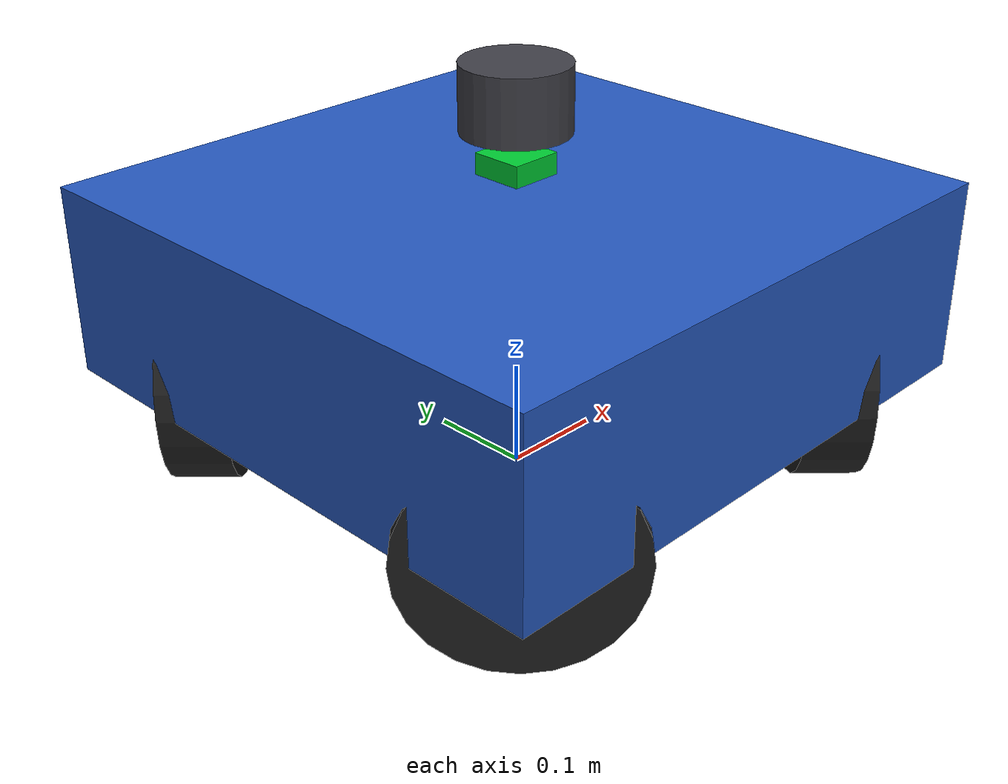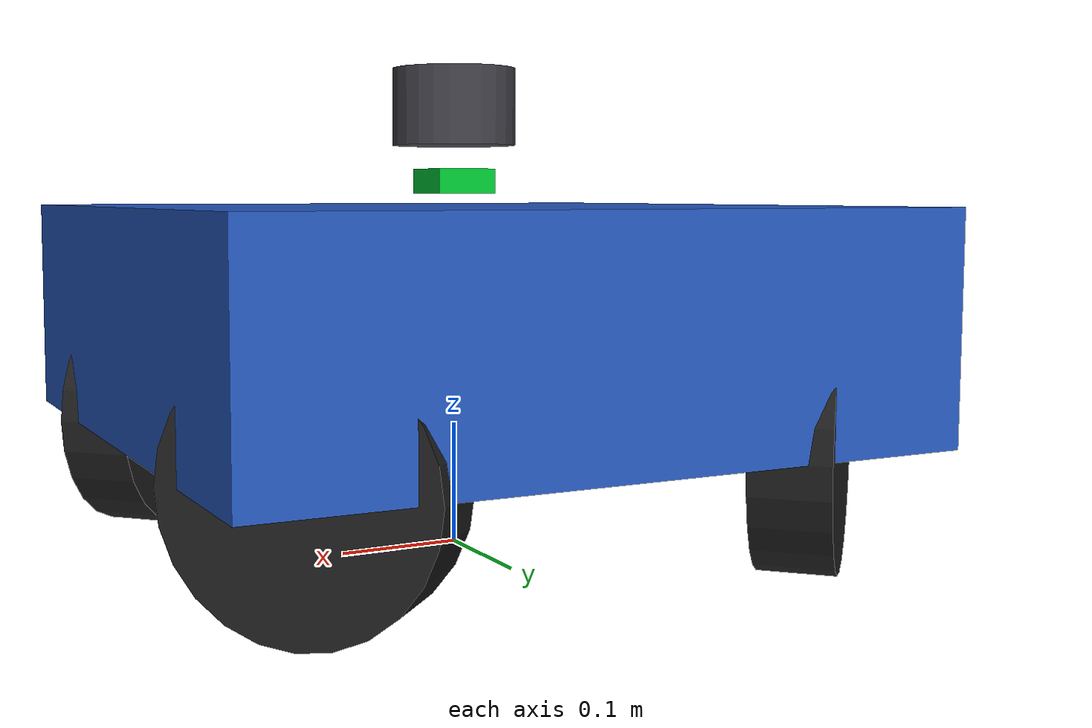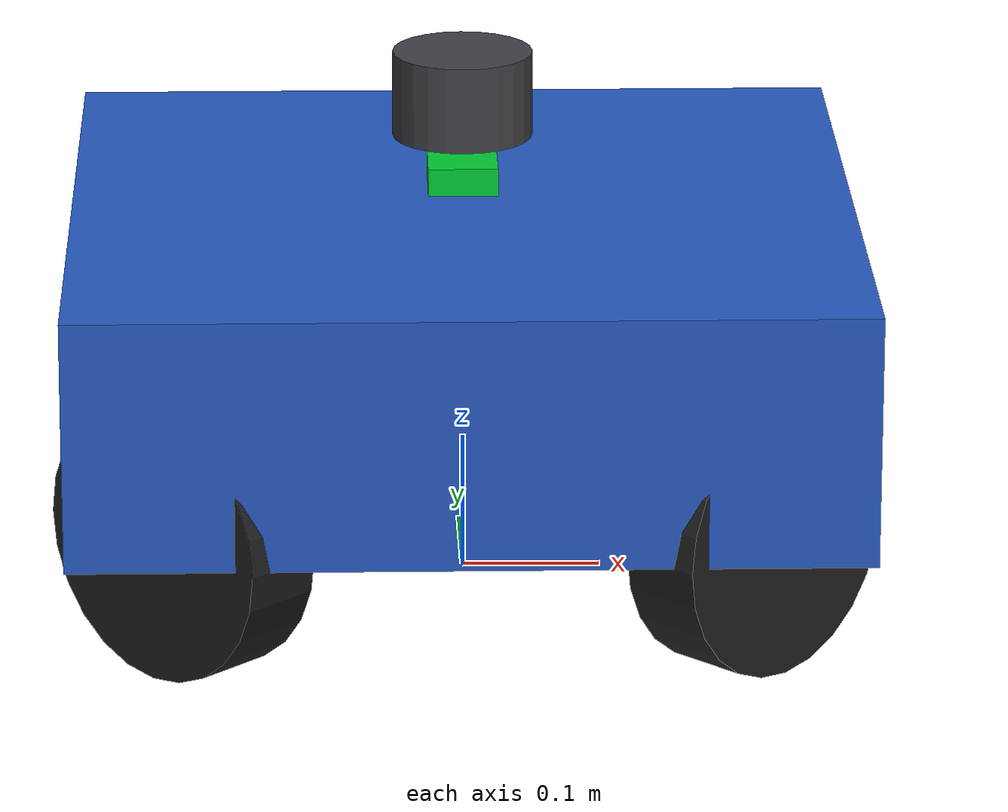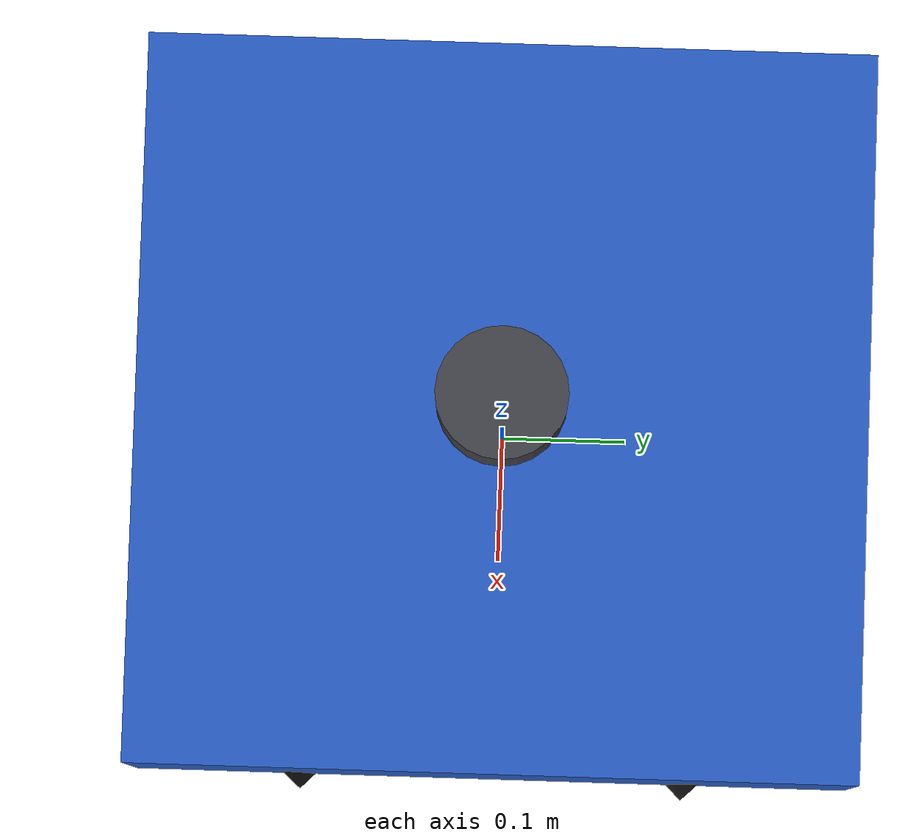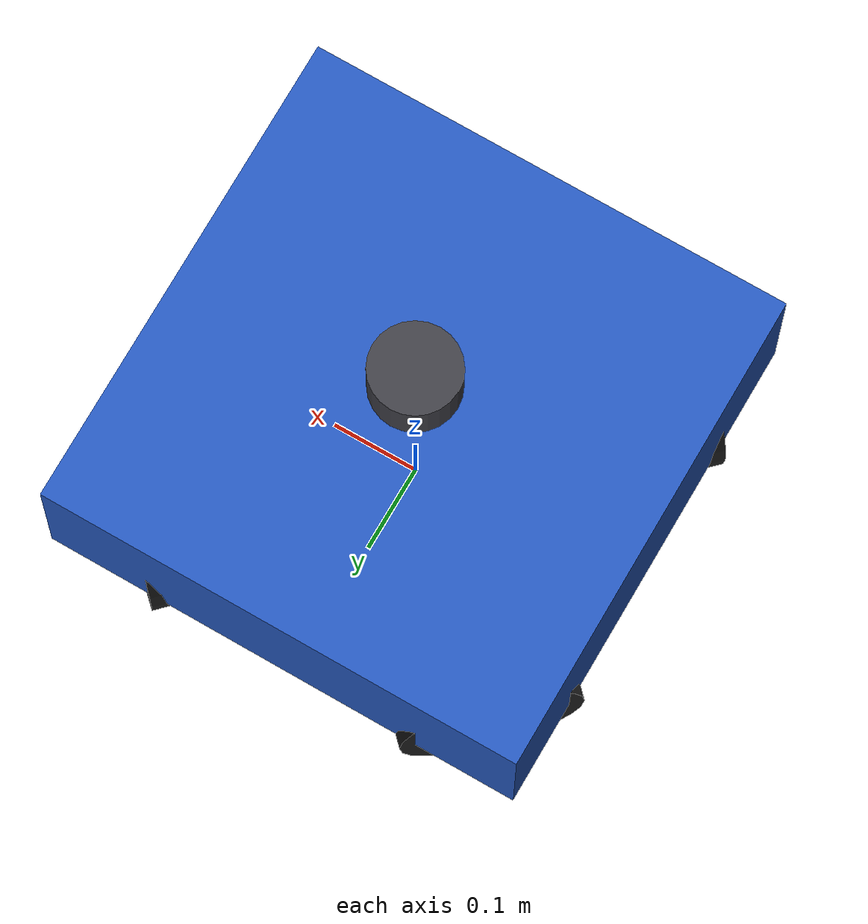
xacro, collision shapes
<?xml version="1.0"?>
<robot name="omni4_field" xmlns:xacro="http://ros.org/wiki/xacro">

  <!-- 雷达后端文件（launch 传绝对路径；本项目只用 Livox Mid-360） -->
  <xacro:arg name="lidar_sensor_xacro" default="lidar_livox_mid360.xacro"/>
  <xacro:arg name="lidar_topic" default="/livox/lidar"/>
  <xacro:arg name="imu_topic" default="/livox/imu"/>
  <!-- 多机器人：每辆车的 ROS 命名空间（controller_manager / joint_states 等） -->
  <xacro:arg name="ns" default=""/>
  <!-- true = planar_move 运动学底盘（多机器人同场用）；false = 物理 + ros2_control -->
  <xacro:arg name="kinematic" default="false"/>
  <xacro:arg name="lidar_mount_z" default="0.36"/>
  <xacro:arg name="imu_mount_z" default="0.30"/>
  <!-- Livox 插件每帧消费的 CSV 行数：mid360.csv 一个完整扫描花样是 20000 行
       （俯仰 -7.2°~+52.2° 全覆盖）。小于 20000 会让一帧只覆盖花样的一部分，
       实测 samples=4000 时每 5 帧就有 2 帧一个有效回波都没有。 -->
  <xacro:arg name="lidar_samples" default="20000"/>
  <xacro:arg name="lidar_downsample" default="4"/>
  <!-- 用 FAST-LIO 时 odom->base_link 由 LIO 广播，插件里程计改名 /odom_gz -->
  <xacro:arg name="publish_odom_tf" default="false"/>
  <xacro:arg name="odom_topic" default="odom_gz"/>
  <xacro:arg name="controllers_yaml" default=""/>

  <xacro:include filename="omni4_body.xacro"/>
  <xacro:include filename="$(arg lidar_sensor_xacro)"/>

  <xacro:omni4_chassis/>
  <xacro:omni4_wheels/>
  <xacro:omni4_imu mount_z="$(arg imu_mount_z)" imu_topic="$(arg imu_topic)" ns="$(arg ns)"/>
  <xacro:omni4_drive publish_odom_tf="$(arg publish_odom_tf)"
                     odom_topic="$(arg odom_topic)"
                     controllers_yaml="$(arg controllers_yaml)"
                     ns="$(arg ns)"
                     kinematic="$(arg kinematic)"/>

  <xacro:omni4_lidar parent="base_link"
                     ns="$(arg ns)"
                     topic="$(arg lidar_topic)"
                     mount_z="$(arg lidar_mount_z)"
                     samples="$(arg lidar_samples)"
                     downsample="$(arg lidar_downsample)"/>

</robot>

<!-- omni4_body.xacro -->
<robot xmlns:xacro="http://ros.org/wiki/xacro">

  <!-- ==================== 尺寸 / 质量参数 ==================== -->
  <xacro:property name="PI" value="3.14159265358979"/>
  <!-- 轮系：200 mm 全向轮（R = 0.10 m），X 型 45° 布局
       ★ 改 R 必须同步改 launch/sim.launch.py 里 omni_drive 的 wheel_radius：
         轮速指令与轮速里程计都按 R 折算，不一致会"跑得比指令快/慢"。 -->
  <xacro:property name="wheel_radius" value="0.10"/>
  <xacro:property name="wheel_width" value="0.06"/>
  <xacro:property name="wheel_x" value="0.20"/>
  <xacro:property name="wheel_y" value="0.20"/>
  <xacro:property name="wheel_mass" value="0.8"/>
  <xacro:property name="wheel_r_center" value="${sqrt(wheel_x*wheel_x + wheel_y*wheel_y)}"/>
  <xacro:property name="phi1" value="${ atan2( wheel_y,  wheel_x)}"/>
  <xacro:property name="phi2" value="${ atan2( wheel_y, -wheel_x)}"/>
  <xacro:property name="phi3" value="${ atan2(-wheel_y, -wheel_x)}"/>
  <xacro:property name="phi4" value="${ atan2(-wheel_y,  wheel_x)}"/>

  <!-- 车体：560 x 560 x 180 mm（= 规则上限 700 的 80%），底面正好坐在轮顶 -->
  <xacro:property name="body_xy" value="0.56"/>
  <xacro:property name="body_z" value="0.18"/>
  <xacro:property name="body_bottom" value="${wheel_radius}"/>
  <xacro:property name="body_mass" value="15.0"/>
  <xacro:property name="imu_default_z" value="0.30"/>
  <xacro:property name="lidar_default_z" value="0.36"/>

  <xacro:macro name="box_inertia" params="m x y z">
    <inertial>
      <mass value="${m}"/>
      <inertia ixx="${m*(y*y+z*z)/12.0}" ixy="0.0" ixz="0.0"
               iyy="${m*(x*x+z*z)/12.0}" iyz="0.0"
               izz="${m*(x*x+y*y)/12.0}"/>
    </inertial>
  </xacro:macro>

  <xacro:macro name="cylinder_inertia" params="m r l">
    <inertial>
      <mass value="${m}"/>
      <inertia ixx="${m*(3.0*r*r+l*l)/12.0}" ixy="0.0" ixz="0.0"
               iyy="${m*(3.0*r*r+l*l)/12.0}" iyz="0.0"
               izz="${m*r*r/2.0}"/>
    </inertial>
  </xacro:macro>

  <!-- ==================== 车体 ==================== -->
  <xacro:macro name="omni4_chassis">
    <link name="base_link">
      <visual>
        <origin xyz="0 0 ${body_bottom + body_z/2.0}" rpy="0 0 0"/>
        <geometry>
          <box size="${body_xy} ${body_xy} ${body_z}"/>
        </geometry>
        <material name="omni_blue">
          <color rgba="0.15 0.35 0.75 1.0"/>
        </material>
      </visual>
      <!-- 顶板（视觉上区分承载面） -->
      <visual name="deck">
        <origin xyz="0 0 ${body_bottom + body_z + 0.01}" rpy="0 0 0"/>
        <geometry>
          <box size="${body_xy*0.8} ${body_xy*0.8} 0.02"/>
        </geometry>
        <material name="omni_deck">
          <color rgba="0.85 0.85 0.88 1.0"/>
        </material>
      </visual>
      <collision>
        <origin xyz="0 0 ${body_bottom + body_z/2.0}" rpy="0 0 0"/>
        <geometry>
          <box size="${body_xy} ${body_xy} ${body_z}"/>
        </geometry>
      </collision>
      <xacro:box_inertia m="${body_mass}" x="${body_xy}" y="${body_xy}" z="${body_z}"/>
    </link>
  </xacro:macro>

  <!-- ==================== 四个全向轮（200 mm，X 型 45°） ==================== -->
  <xacro:macro name="omni4_wheel" params="index corner_x corner_y phi">
    <link name="wheel_${index}">
      <!-- 视觉：滚子网格本来就是按 R = 100 mm 建模的，200 mm 轮径正好 1:1 -->
      <visual>
        <geometry>
          <mesh filename="package://rc_field_nav/meshes/omni_wheel_R100.obj"
                scale="1.0 1.0 1.0"/>
        </geometry>
        <material name="omni_black">
          <color rgba="0.12 0.12 0.12 1.0"/>
        </material>
      </visual>
      <visual name="hub_marker">
        <geometry>
          <cylinder radius="${wheel_radius*0.8}" length="${wheel_width*0.9}"/>
        </geometry>
        <material name="omni_hub">
          <color rgba="0.35 0.35 0.4 1.0"/>
        </material>
      </visual>
      <collision>
        <geometry>
          <cylinder radius="${wheel_radius}" length="${wheel_width}"/>
        </geometry>
      </collision>
      <xacro:cylinder_inertia m="${wheel_mass}" r="${wheel_radius}" l="${wheel_width}"/>
    </link>
    <!-- rpy = (-90°, 0, φ+90°)：圆柱轴(局部 z)先转水平，再绕 z 转到该轮径向 -->
    <joint name="base_to_wheel${index}" type="continuous">
      <parent link="base_link"/>
      <child link="wheel_${index}"/>
      <origin xyz="${corner_x} ${corner_y} ${wheel_radius}"
              rpy="${-PI/2} 0 ${phi + PI/2}"/>
      <axis xyz="0 0 1"/>
      <dynamics damping="0.02" friction="0.01"/>
    </joint>
  </xacro:macro>

  <xacro:macro name="omni4_wheels">
    <xacro:omni4_wheel index="1" corner_x="${ wheel_x}" corner_y="${ wheel_y}" phi="${phi1}"/>
    <xacro:omni4_wheel index="2" corner_x="${-wheel_x}" corner_y="${ wheel_y}" phi="${phi2}"/>
    <xacro:omni4_wheel index="3" corner_x="${-wheel_x}" corner_y="${-wheel_y}" phi="${phi3}"/>
    <xacro:omni4_wheel index="4" corner_x="${ wheel_x}" corner_y="${-wheel_y}" phi="${phi4}"/>
  </xacro:macro>

  <!-- ==================== IMU ==================== -->
  <xacro:macro name="omni4_imu" params="mount_z:=${imu_default_z} imu_topic:='/livox/imu' ns:=''">
    <link name="imu_link">
      <visual>
        <geometry>
          <box size="0.05 0.05 0.02"/>
        </geometry>
        <material name="omni_green">
          <color rgba="0.0 0.8 0.2 1.0"/>
        </material>
      </visual>
      <collision>
        <geometry>
          <box size="0.05 0.05 0.02"/>
        </geometry>
      </collision>
      <inertial>
        <mass value="0.05"/>
        <inertia ixx="1e-6" ixy="0" ixz="0" iyy="1e-6" iyz="0" izz="1e-6"/>
      </inertial>
    </link>
    <joint name="base_to_imu" type="fixed">
      <parent link="base_link"/>
      <child link="imu_link"/>
      <origin xyz="0 0 ${mount_z}" rpy="0 0 0"/>
    </joint>

    <gazebo reference="imu_link">
      <sensor name="imu_sensor" type="imu">
        <always_on>true</always_on>
        <!-- 200 Hz：与真实 Mid-360 内置 IMU 一致，LIO 预积分需要密数据 -->
        <update_rate>200</update_rate>
        <visualize>false</visualize>
        <imu>
          <angular_velocity>
            <x><noise type="gaussian"><mean>0.0</mean><stddev>2e-4</stddev><bias_mean>0.0</bias_mean><bias_stddev>0.0</bias_stddev></noise></x>
            <y><noise type="gaussian"><mean>0.0</mean><stddev>2e-4</stddev><bias_mean>0.0</bias_mean><bias_stddev>0.0</bias_stddev></noise></y>
            <z><noise type="gaussian"><mean>0.0</mean><stddev>2e-4</stddev><bias_mean>0.0</bias_mean><bias_stddev>0.0</bias_stddev></noise></z>
          </angular_velocity>
          <linear_acceleration>
            <x><noise type="gaussian"><mean>0.0</mean><stddev>2e-3</stddev><bias_mean>0.0</bias_mean><bias_stddev>0.0</bias_stddev></noise></x>
            <y><noise type="gaussian"><mean>0.0</mean><stddev>2e-3</stddev><bias_mean>0.0</bias_mean><bias_stddev>0.0</bias_stddev></noise></y>
            <z><noise type="gaussian"><mean>0.0</mean><stddev>2e-3</stddev><bias_mean>0.0</bias_mean><bias_stddev>0.0</bias_stddev></noise></z>
          </linear_acceleration>
        </imu>
        <plugin name="imu_plugin${'_' + ns if ns else ''}" filename="libgazebo_ros_imu_sensor.so">
          <ros>
            <remapping>~/out:=${imu_topic}</remapping>
          </ros>
          <frame_name>imu_link</frame_name>
          <initial_orientation_as_reference>false</initial_orientation_as_reference>
        </plugin>
      </sensor>
    </gazebo>
  </xacro:macro>

  <!-- ==================== 驱动：physics（唯一） ==================== -->
  <xacro:macro name="omni4_drive" params="publish_odom_tf:=true
                                          odom_topic:=odom
                                          controllers_yaml:=''
                                          ns:=''
                                          kinematic:=false">
    <xacro:unless value="${kinematic}">
    <ros2_control name="Omni4System" type="system">
      <hardware>
        <plugin>gazebo_ros2_control/GazeboSystem</plugin>
      </hardware>
      <joint name="base_to_wheel1">
        <command_interface name="velocity"/>
        <state_interface name="velocity"/>
        <state_interface name="position"/>
      </joint>
      <joint name="base_to_wheel2">
        <command_interface name="velocity"/>
        <state_interface name="velocity"/>
        <state_interface name="position"/>
      </joint>
      <joint name="base_to_wheel3">
        <command_interface name="velocity"/>
        <state_interface name="velocity"/>
        <state_interface name="position"/>
      </joint>
      <joint name="base_to_wheel4">
        <command_interface name="velocity"/>
        <state_interface name="velocity"/>
        <state_interface name="position"/>
      </joint>
    </ros2_control>
    </xacro:unless>

    <gazebo>
      <xacro:if value="${kinematic}">
        <plugin name="planar_move${'_' + ns if ns else ''}" filename="libgazebo_ros_planar_move.so">
          <ros>
            <xacro:if value="${ns != ''}">
              <namespace>${ns}</namespace>
            </xacro:if>
            <remapping>cmd_vel:=cmd_vel</remapping>
            <remapping>odom:=odom</remapping>
          </ros>
          <update_rate>100</update_rate>
          <publish_odom>true</publish_odom>
          <publish_odom_tf>${publish_odom_tf}</publish_odom_tf>
          <publish_wheel_tf>false</publish_wheel_tf>
          <odometry_frame>${(ns + '/') if ns != '' else ''}odom</odometry_frame>
          <robot_base_frame>${(ns + '/') if ns != '' else ''}base_link</robot_base_frame>
        </plugin>
      </xacro:if>
      <xacro:unless value="${kinematic}">
      <plugin filename="libgazebo_ros2_control.so" name="gazebo_ros2_control${'_' + ns if ns else ''}">
        <xacro:if value="${ns != ''}">
          <ros>
            <namespace>${ns}</namespace>
          </ros>
        </xacro:if>
        <parameters>${controllers_yaml}</parameters>
      </plugin>
      <!-- 轮子转速/位置，robot_state_publisher 与 omni_drive 都要用 -->
      <plugin name="omni4_joint_state${'_' + ns if ns else ''}" filename="libgazebo_ros_joint_state_publisher.so">
        <ros>
          <xacro:if value="${ns != ''}">
            <namespace>${ns}</namespace>
          </xacro:if>
          <remapping>~/out:=joint_states</remapping>
        </ros>
        <update_rate>50</update_rate>
        <joint_name>base_to_wheel1</joint_name>
        <joint_name>base_to_wheel2</joint_name>
        <joint_name>base_to_wheel3</joint_name>
        <joint_name>base_to_wheel4</joint_name>
      </plugin>
      </xacro:unless>
    </gazebo>

    <gazebo reference="base_link">
      <material>Gazebo/Blue</material>
      <mu1>0.5</mu1>
      <mu2>0.5</mu2>
      <kp>1.0e7</kp>
      <kd>1.0e3</kd>
      <min_depth>0.001</min_depth>
      <max_vel>0.1</max_vel>
    </gazebo>

    <xacro:macro name="omni_wheel_surface" params="index">
      <gazebo reference="wheel_${index}">
        <material>Gazebo/Black</material>
        <mu1>0.05</mu1>
        <mu2>1.5</mu2>
        <fdir1>0 0 1</fdir1>
        <kp>1.0e7</kp>
        <kd>1.0e3</kd>
        <min_depth>0.001</min_depth>
        <max_vel>0.1</max_vel>
      </gazebo>
    </xacro:macro>
    <xacro:omni_wheel_surface index="1"/>
    <xacro:omni_wheel_surface index="2"/>
    <xacro:omni_wheel_surface index="3"/>
    <xacro:omni_wheel_surface index="4"/>
  </xacro:macro>

</robot>

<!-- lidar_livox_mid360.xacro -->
<robot xmlns:xacro="http://ros.org/wiki/xacro">

  <xacro:macro name="omni4_lidar"
               params="parent:='base_link' topic:='/livox/lidar' mount_z:=0.50 ns:=''
                       scan_csv:='' samples:=4000 downsample:=4 range_max:=40.0
                       horizontal_samples:=100 vertical_samples:=360">

    <link name="livox_frame">
      <visual>
        <geometry>
          <cylinder radius="0.05" length="0.062"/>
        </geometry>
        <material name="omni_dark">
          <color rgba="0.25 0.25 0.28 1.0"/>
        </material>
      </visual>
      <collision>
        <geometry>
          <cylinder radius="0.05" length="0.062"/>
        </geometry>
      </collision>
      <inertial>
        <mass value="0.265"/>
        <inertia ixx="3.5e-4" ixy="0" ixz="0" iyy="3.5e-4" iyz="0" izz="3.3e-4"/>
      </inertial>
    </link>

    <joint name="base_to_livox" type="fixed">
      <parent link="${parent}"/>
      <child link="livox_frame"/>
      <origin xyz="0 0 ${mount_z}" rpy="0 0 0"/>
    </joint>

    <gazebo reference="livox_frame">
      <material>Gazebo/DarkGrey</material>
      <sensor type="ray" name="livox_frame">
        <pose>0 0 0 0 0 0</pose>
        <!-- always_on 必须为 true：插件靠 OnNewLaserScans() 回调取数据，
             关闭时若无订阅者则传感器不更新，表现为点云一帧都没有。 -->
        <always_on>true</always_on>
        <!-- gzserver 内没有 OGRE 渲染场景时，sensor 级 visualize=true 会让
             射线传感器无法更新，故关闭（只影响 GUI 里是否画射线）。 -->
        <visualize>false</visualize>
        <!-- 15 Hz：与真机 Mid-360 驱动 publish_freq（15 Hz）和 LIO scan_rate 一致。
             注意：每帧仍然消费 samples 行完整扫描花样，所以 15 Hz 下射线/秒
             比 10 Hz 高 50%（CPU 更吃紧，必要时调小 lidar_downsample）。 -->
        <update_rate>15</update_rate>

        <plugin name="livox_frame_plugin${'_' + ns if ns else ''}" filename="libros2_livox.so">
          <ray>
            <scan>
              <horizontal>
                <samples>${horizontal_samples}</samples>
                <resolution>1</resolution>
                <min_angle>0</min_angle>
                <max_angle>${2*3.14159265358979}</max_angle>
              </horizontal>
              <!-- Mid-360 实测垂直视场：-7.22° ~ +55.22° -->
              <vertical>
                <samples>${vertical_samples}</samples>
                <resolution>1</resolution>
                <min_angle>${-7.22/180*3.14159265358979}</min_angle>
                <max_angle>${55.22/180*3.14159265358979}</max_angle>
              </vertical>
            </scan>
            <range>
              <min>0.10</min>
              <max>${range_max}</max>
              <resolution>0.01</resolution>
            </range>
            <noise>
              <type>gaussian</type>
              <mean>0.0</mean>
              <stddev>0.002</stddev>
            </noise>
          </ray>
          <visualize>false</visualize>
          <samples>${samples}</samples>
          <downsample>${downsample}</downsample>
          <xacro:if value="${scan_csv == ''}">
            <csv_file_name>$(find ros2_livox_simulation)/scan_mode/mid360.csv</csv_file_name>
          </xacro:if>
          <xacro:if value="${scan_csv != ''}">
            <csv_file_name>${scan_csv}</csv_file_name>
          </xacro:if>
          <topic>${topic}</topic>
        </plugin>
      </sensor>
    </gazebo>
  </xacro:macro>

</robot>
